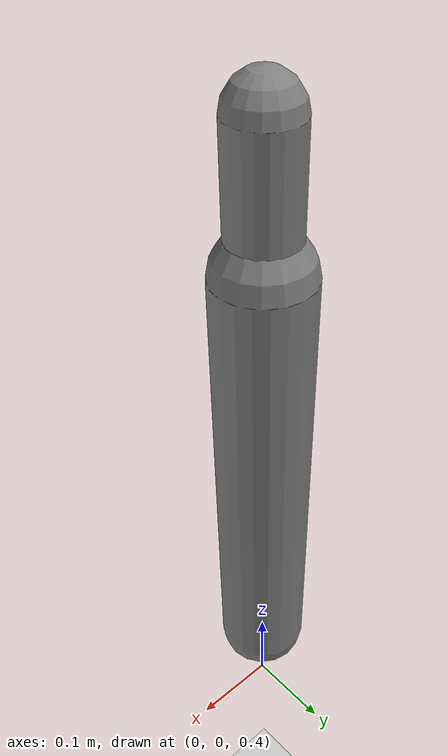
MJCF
<?xml version='1.0' encoding='UTF-8'?>
<mujoco model="RobotModel">
  <option gravity="0 0 -9.81" timestep="0.002" solver="CG" iterations="500" integrator="Euler"/>
  <worldbody>
    <geom name="Floor" type="plane" size="10 10 0.1" pos="0 0 0" rgba="0.8 0.8 0.8 1"/>
    <body name="Limb0" pos="0 0 0.5">
      <geom type="capsule" fromto="0 0 0 0 0 0.5" size="0.05" density="1000" contype="0" conaffinity="0"/>
      <body name="Limb0_8069e741" pos="0 0 0.5">
        <geom type="capsule" fromto="0 0 0 0 0 0.13541450548226555" size="0.03495498242506623" density="800" contype="0" conaffinity="0"/>
        <joint name="Joint_Limb0_Limb0_8069e741_0" type="hinge" axis="1 0 0" range="-60 60"/>
      </body>
    </body>
  </worldbody>
  <actuator>
    <position name="position_Actuator_Joint_Limb0_Limb0_8069e741_0" joint="Joint_Limb0_Limb0_8069e741_0" gear="1.0"/>
  </actuator>
</mujoco>
